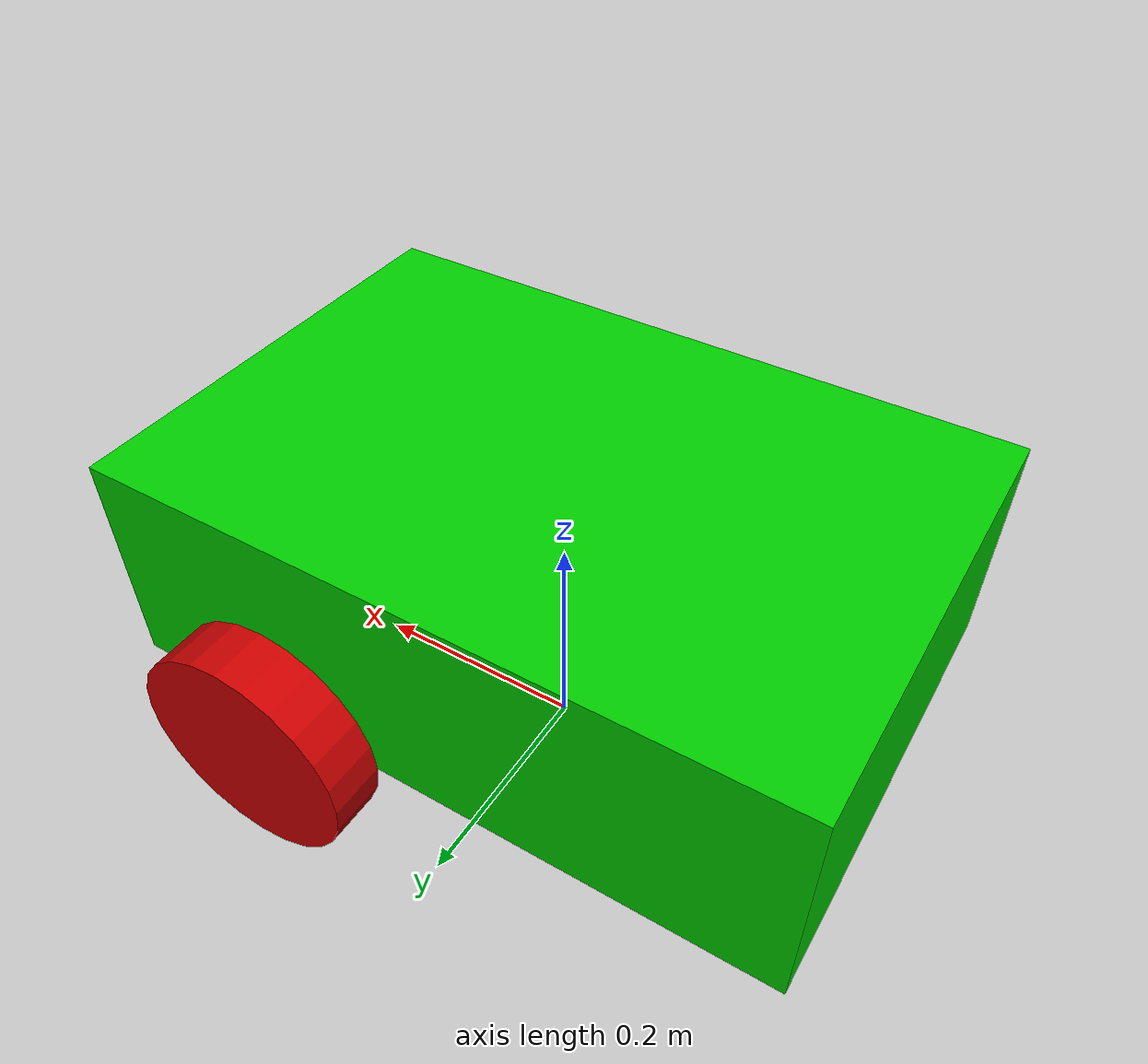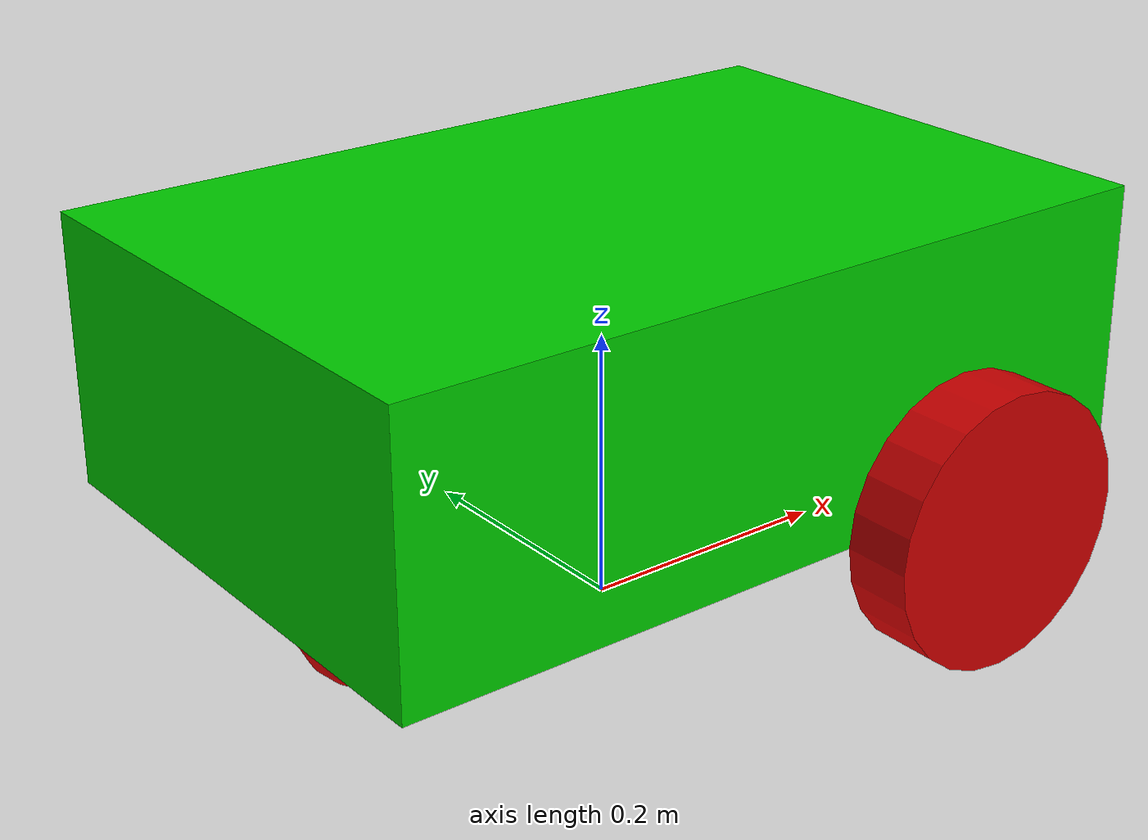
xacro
<?xml version="1.0" ?>
<robot xmlns:xacro="http://www.ros.org/wiki/xacro" name="growing_bot">

    <xacro:include filename="$(find growing_bot)/urdf/materials.xacro" />
    <xacro:include filename="$(find growing_bot)/urdf/macros.xacro" />

    <xacro:property name="base_length" value="0.6" />
    <xacro:property name="base_width" value="0.4" />
    <xacro:property name="base_height" value="0.2" />
    <xacro:property name="base_mass" value="20.0" />
    <xacro:property name="wheel_radius" value="0.1" />
    <xacro:property name="wheel_length" value="0.05" />
    <xacro:property name="camera_length" value="0.01" />
    <xacro:property name="camera_width" value="0.1" />
    <xacro:property name="camera_height" value="0.05" />
    <xacro:property name="camera_horizontal_fov" value="60" />

    <xacro:property name="two_d_lidar_height" value="0.06" />
    <xacro:property name="two_d_lidar_radius" value="0.075" />
    <xacro:property name="two_d_lidar_update_rate" value="30" />
    <xacro:property name="two_d_lidar_sample_size" value="361" />
    <xacro:property name="two_d_lidar_min_angle" value="0" />
    <xacro:property name="two_d_lidar_max_angle" value="360" />
    <xacro:property name="two_d_lidar_min_range" value="0.55" />
    <xacro:property name="two_d_lidar_max_range" value="16" />

    <xacro:arg name="robot_namespace" default=""/>
    <xacro:arg name="wheel_odom_topic" default="odom" />
    <xacro:arg name="camera_enabled" default="false" />
    <xacro:arg name="stereo_camera_enabled" default="false" />
    <xacro:arg name="two_d_lidar_enabled" default="false" />
    <xacro:arg name="publish_wheel_odom_tf" default="true" />
    <xacro:arg name="conveyor_enabled" default="false"/>
    <xacro:arg name="ground_truth_frame" default="map"/>
    <xacro:arg name="sim_gazebo" default="false" />
    <xacro:arg name="sim_ign" default="false" />
    <xacro:arg name="sim_gz" default="false" />
    <xacro:arg name="odometry_source" default="world" />
    <xacro:arg name="ros_control_enabled" default="false"/>

    <xacro:property name="odometry_source" value="$(arg odometry_source)"/>

    <link name="base_footprint" />

    <link name="base_link">
        <visual>
            <geometry>
                <box size="${base_length} ${base_width} ${base_height}" />
            </geometry>
            <material name="green" />
            <origin xyz="0 0 ${base_height/2}" rpy="0 0 0" />
        </visual>
        <collision>
            <geometry>
                <box size="${base_length} ${base_width} ${base_height}" />
            </geometry>
            <origin xyz="0 0 ${base_height/2}" rpy="0 0 0" />
        </collision>
        <inertial>
            <origin xyz="0 0 ${base_height/2}" rpy="0 0 0" />
            <mass value="${base_mass}" />
            <xacro:box_inertia m="${base_mass}" x="${base_length}" y="${base_width}" z="${base_height}" />
        </inertial>
    </link>

    <xacro:macro name="wheel_link" params="prefix">
        <link name="${prefix}_wheel_link">
            <visual>
                <geometry>
                    <cylinder radius="${wheel_radius}" length="${wheel_length}" />
                </geometry>
                <material name="red" />
                <origin xyz="0 0 0" rpy="${pi/2} 0 0" />
            </visual>
            <collision>
                <geometry>
                    <sphere radius="${wheel_radius}" />
                </geometry>
                <origin xyz="0 0 0" rpy="0 0 0" />
            </collision>
            <inertial>
                <origin xyz="0 0 0" rpy="${pi/2} 0 0" />
                <mass value="1.0" />
                <xacro:cylinder_inertia m="1.0" r="${wheel_radius}" h="${wheel_length}" />
            </inertial>
        </link>
    </xacro:macro>

    <xacro:wheel_link prefix="left" />
    <xacro:wheel_link prefix="right" />

    <link name="caster_link">
        <visual>
            <geometry>
                <sphere radius="${wheel_radius/2}" />
            </geometry>
            <material name="red" />
            <origin xyz="0 0 0" rpy="0 0 0" />
        </visual>
        <collision>
            <geometry>
                <sphere radius="${wheel_radius/2}" />
            </geometry>
            <origin xyz="0 0 0" rpy="0 0 0" />
        </collision>
        <inertial>
            <origin xyz="0 0 0" rpy="0 0 0" />
            <mass value="0.05" />
            <xacro:sphere_inertia m="0.05" r="${wheel_radius/2}" />
        </inertial>
    </link>

    <joint name="base_joint" type="fixed">
        <parent link="base_footprint" />
        <child link="base_link" />
        <origin xyz="0 0 ${wheel_radius}" rpy="0 0 0" />
    </joint>

    <joint name="base_left_joint" type="continuous">
        <parent link="base_link" />
        <child link="left_wheel_link" />
        <!-- Drive wheels at +x so cmd_vel +x (forward) leads; caster trails at rear -->
        <origin xyz="${base_length/4} ${base_width/2+wheel_length/2} 0" rpy="0 0 0" />
        <axis xyz="0 1 0" />
        <!-- Required so gazebo_ros2_control SetVelocity(0) can brake (fmax); else freewheel creep -->
        <limit effort="20.0" velocity="10.0" />
    </joint>

    <joint name="base_right_joint" type="continuous">
        <parent link="base_link" />
        <child link="right_wheel_link" />
        <origin xyz="${base_length/4} ${-(base_width/2+wheel_length/2)} 0" rpy="0 0 0" />
        <axis xyz="0 1 0" />
        <limit effort="20.0" velocity="10.0" />
    </joint>

    <joint name="base_caster_joint" type="fixed">
        <parent link="base_link" />
        <child link="caster_link" />
        <origin xyz="${-(base_length/2-wheel_radius)} 0 ${-wheel_radius/2}" rpy="0 0 0" />
    </joint>

    <!-- 2D LIDAR -->
    <xacro:if value="$(arg two_d_lidar_enabled)">
        <link name="two_d_lidar">
            <visual>
                <origin xyz="0 0 0" rpy="0 0 0" />
                <geometry>
                    <cylinder length="${two_d_lidar_height}" radius="${two_d_lidar_radius}" />
                </geometry>
                <material name="aluminium" />
            </visual>
            <collision>
                <origin xyz="0 0 0" rpy="0 0 0" />
                <geometry>
                    <cylinder length="${two_d_lidar_height}" radius="${two_d_lidar_radius}" />
                </geometry>
            </collision>
            <inertial>
                <origin xyz="0 0 0" rpy="0 0 0" />
                <mass value="0.1" />
                <xacro:cylinder_inertia m="0.1" r="${two_d_lidar_radius}" h="${two_d_lidar_height}" />
            </inertial>
        </link>

        <joint name="two_d_lidar_joint" type="fixed">
            <parent link="base_link" />
            <child link="two_d_lidar" />
            <origin xyz="0 0 ${base_height + two_d_lidar_height/2}" rpy="0 0 0" />
        </joint>
    </xacro:if>

    <!-- IMU -->
    <link name="imu_frame" />

    <joint name="imu_joint" type="fixed">
        <parent link="base_link" />
        <child link="imu_frame" />
        <origin xyz="0 0 ${base_height}" rpy="0 0 0" />
    </joint>

    <!-- CAMERA -->
    <xacro:if value="$(arg camera_enabled)">
        <link name="kinect_camera">
            <visual>
                <origin xyz="0 0 0" rpy="0 0 0" />
                <geometry>
                    <box size="${camera_length} ${camera_width} ${camera_height}" />
                </geometry>
                <material name="red" />
            </visual>
            <collision>
                <origin xyz="0 0 0" rpy="0 0 0" />
                <geometry>
                    <box size="${camera_length} ${camera_width} ${camera_height}" />
                </geometry>
            </collision>
            <inertial>
                <origin xyz="0 0 0" rpy="0 0 0" />
                <mass value="0.1" />
                <xacro:box_inertia m="0.1" x="${camera_length}" y="${camera_width}" z="${camera_height}" />
            </inertial>
        </link>

        <joint name="kinect_camera_joint" type="fixed">
            <parent link="base_link" />
            <child link="kinect_camera" />
            <origin xyz="${base_length/2 + camera_length/2} 0 ${base_height/2}" rpy="0 0 0" />
        </joint>

        <link name="kinect_camera_optical" />

        <joint name="kinect_camera_optical_joint" type="fixed">
            <parent link="kinect_camera" />
            <child link="kinect_camera_optical" />
            <origin xyz="0 0 0" rpy="${-pi/2} 0 ${-pi/2}" />
        </joint>
    </xacro:if>

    <!-- STEREO CAMERA -->
    <xacro:if value="$(arg stereo_camera_enabled)">
        <link name="stereo_camera">
            <visual>
                <origin xyz="0 0 0" rpy="0 0 0" />
                <geometry>
                    <box size="${camera_length} ${camera_width} ${camera_height}" />
                </geometry>
                <material name="red" />
            </visual>
            <collision>
                <origin xyz="0 0 0" rpy="0 0 0" />
                <geometry>
                    <box size="${camera_length} ${camera_width} ${camera_height}" />
                </geometry>
            </collision>
            <inertial>
                <origin xyz="0 0 0" rpy="0 0 0" />
                <mass value="0.1" />
                <xacro:box_inertia m="0.1" x="${camera_length}" y="${camera_width}" z="${camera_height}" />
            </inertial>
        </link>

        <joint name="stereo_camera_joint" type="fixed">
            <parent link="base_link" />
            <child link="stereo_camera" />
            <origin xyz="${base_length/2 + camera_length/2} 0 ${base_height/2}" rpy="0 0 0" />
        </joint>

        <link name="stereo_camera_optical" />

        <joint name="stereo_camera_optical_joint" type="fixed">
            <parent link="stereo_camera" />
            <child link="stereo_camera_optical" />
            <origin xyz="0 0 0" rpy="${-pi/2} 0 ${-pi/2}" />
        </joint>
    </xacro:if>

    <!-- ROS CONTROL -->
    <xacro:if value="$(arg ros_control_enabled)">
        <xacro:include filename="$(find growing_bot)/urdf/ros_control.xacro" />
    </xacro:if>

</robot>

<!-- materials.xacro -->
<robot xmlns:xacro="http://www.ros.org/wiki/xacro" name="growing_bot">

    <material name="black">
        <color rgba="0.0 0.0 0.0 1.0"/>
    </material>

    <material name="blue">
        <color rgba="0.0 0.0 0.8 1.0"/>
    </material>

    <material name="Blue">
        <color rgba="0.0 0.0 0.8 1.0"/>
    </material>

    <material name="Gray">
        <color rgba="0.5 0.5 0.5 1.0"/>
    </material>

    <material name="green">
        <color rgba="0.0 0.8 0.0 1.0"/>
    </material>

    <material name="dark_green">
        <color rgba="0.0 0.35 0.0 1.0"/>
    </material>

    <material name="light_green">
        <color rgba="0.4 1.0 0.4 1.0"/>
    </material>

    <material name="yellow">
        <color rgba="1.0 1.0 0.0 1.0"/>
    </material>

    <material name="dark_grey">
        <color rgba="0.2 0.2 0.2 1.0"/>
    </material>

    <material name="orange">
        <color rgba="${255/255} ${108/255} ${10/255} 1.0"/>
    </material>

    <material name="brown">
        <color rgba="${139/255} ${69/255} ${19/255} 1.0"/>
    </material>

    <material name="red">
        <color rgba="0.8 0.0 0.0 1.0"/>
    </material>

    <material name="turquoise">
        <color rgba="${64/255} ${224/255} ${208/255} 1.0"/>
    </material>

    <material name="purple">
        <color rgba="${128/255} ${0/255} ${128/255} 1.0"/>
    </material>

    <material name="white">
        <color rgba="1.0 1.0 1.0 1.0"/>
    </material>

    <material name="aluminium">
        <color rgba="0.5 0.5 0.5 1"/>
    </material>

    <material name="plastic">
        <color rgba="0.1 0.1 0.1 1"/>
    </material>

</robot>

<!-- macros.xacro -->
<robot xmlns:xacro="http://www.ros.org/wiki/xacro" name="growing_bot">

    <!--................................ INERTIA MATRICES .............................. -->

    <xacro:macro name="cylinder_inertia" params="m r h">
        <inertia ixx="${m * (3 * r * r + h * h) / 12}" ixy="0" ixz="0" iyy="${m * (3 * r * r + h * h) / 12}" iyz="0" izz="${m * r * r / 2}" />
    </xacro:macro>

    <xacro:macro name="box_inertia" params="m x y z">
        <inertia ixx="${m * (y * y + z * z) / 12}" ixy="0" ixz="0" iyy="${m * (x * x + z * z) / 12}" iyz="0" izz="${m * (y * y + x * x) / 12}" />
    </xacro:macro>

    <xacro:macro name="sphere_inertia" params="m r">
        <inertia ixx="${2 * m * r * r / 5}" ixy="0" ixz="0" iyy="${2 * m * r * r / 5}" iyz="0" izz="${2 * m * r * r / 5}" />
    </xacro:macro>

</robot>
